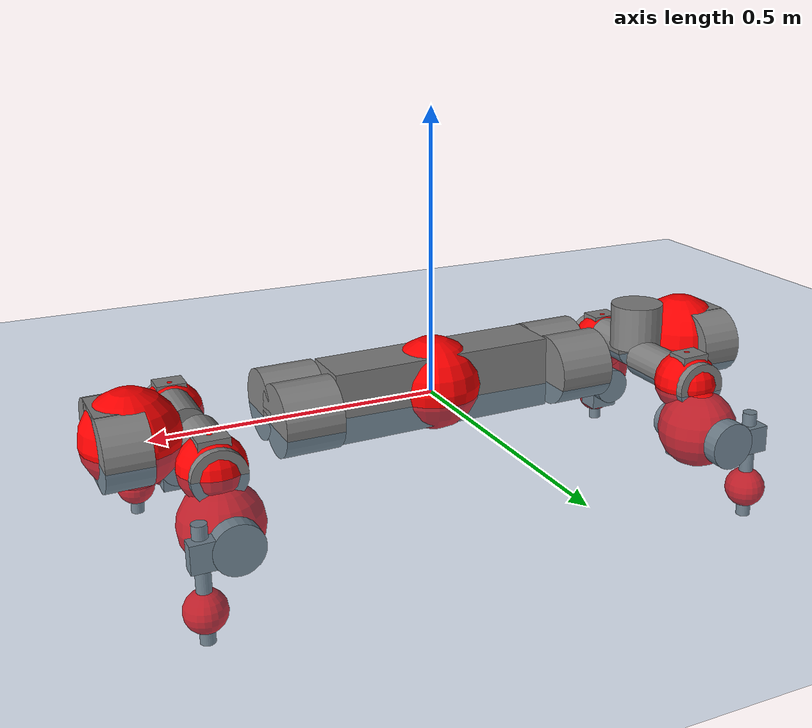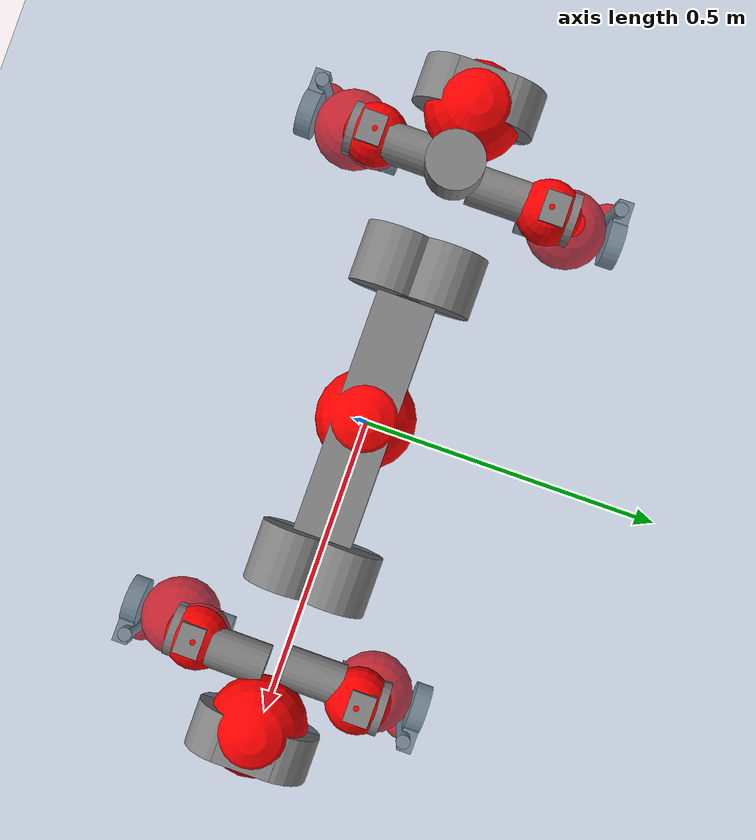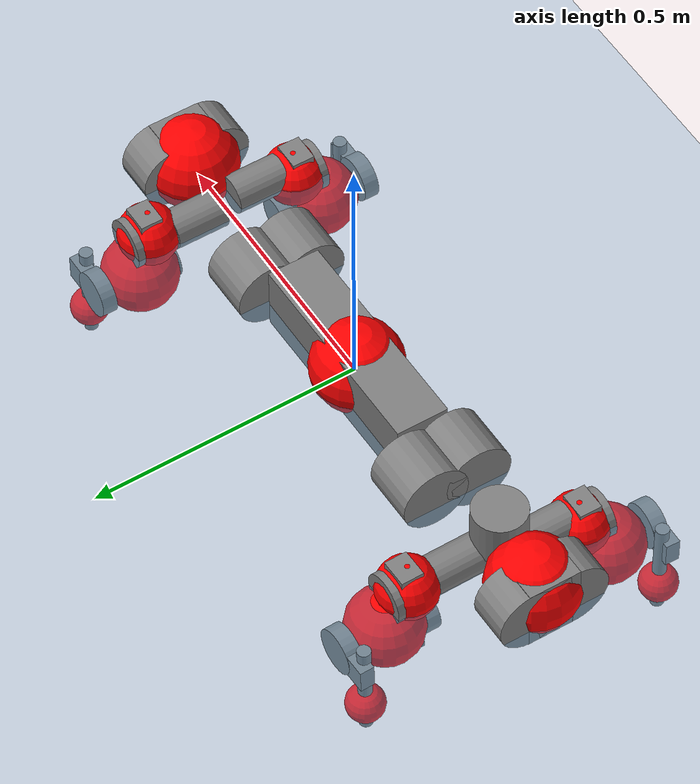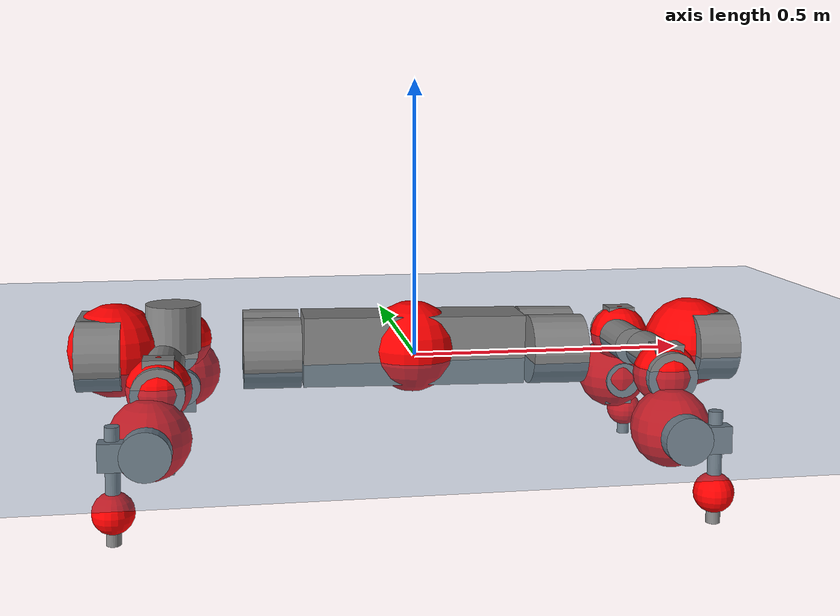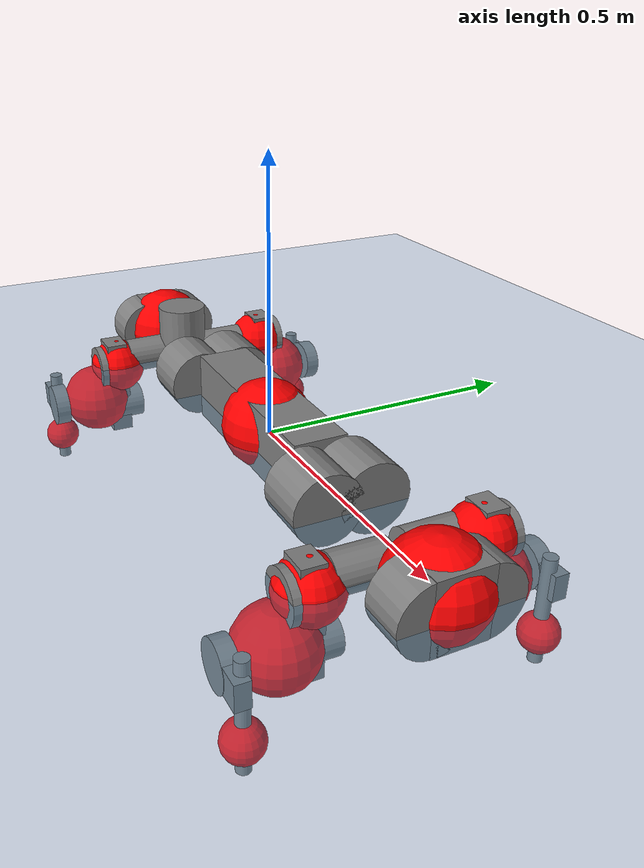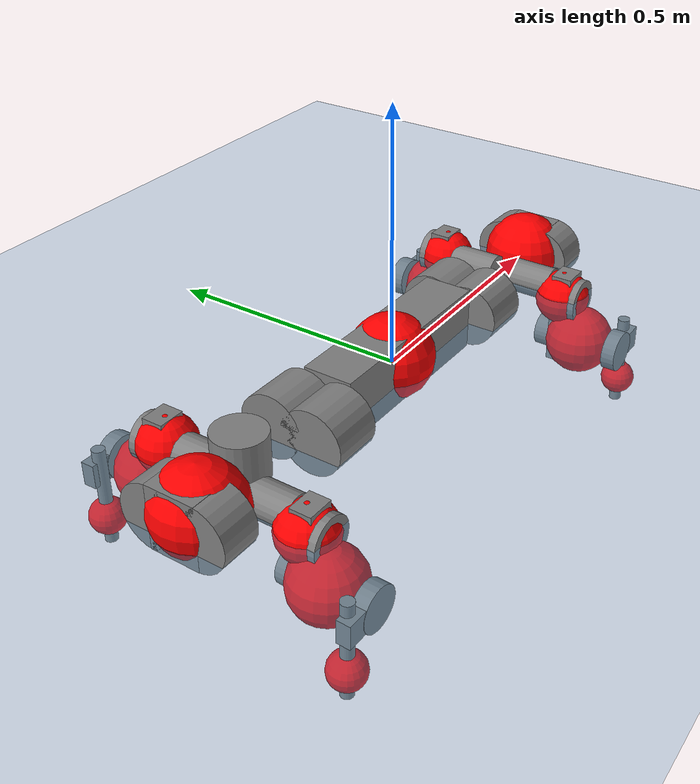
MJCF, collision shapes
<mujoco model="anymal_c">
  <compiler angle="radian" assetdir="assets" balanceinertia="true" inertiafromgeom="false"/>

  <option timestep="0.005" density="1.2" viscosity="2e-05"/>

  <size nkey="1"/>

  <visual>
    <quality shadowsize="8192"/>
    <map shadowclip="0.5"/>
  </visual>

  <default>
    <default class="/">
      <material specular="0" shininess="0.25"/>
      <geom contype="0" conaffinity="0" group="1" solref="-1000 -80"/>
      <site size="0.01 0.005 0.005" group="5"/>
      <general forcelimited="true" forcerange="-80 80" biastype="affine" gainprm="80" biasprm="0 -80 -2"/>
      <default class="anymal_c">
        <joint armature="0.01" damping="0.01" frictionloss="0.1"/>
        <default class="visual">
          <geom type="mesh" group="2"/>
          <default class="visual_zflip"/>
        </default>
        <default class="collision">
          <geom type="cylinder" group="3"/>
          <default class="foot">
            <geom size="0.03 0 0" type="sphere" condim="6" priority="1" friction="0.8 0.02 0.01" solimp="0.015 1 0.03"/>
          </default>
        </default>
      </default>
      <default class="reward_collision_sphere">
        <geom group="5" rgba="1 0 0 1"/>
      </default>
    </default>
  </default>

  <asset>
    <texture type="skybox" colorspace="auto" name="//unnamed_texture_0" builtin="gradient" rgb1="0.95 0.95 0.95" rgb2="0.95 0.95 0.95" width="100" height="600"/>
    <texture type="2d" colorspace="auto" name="texplane" builtin="checker" rgb1="0.345 0.575 0.748" rgb2="0.345 0.575 0.748" markrgb="1 1 1" width="512" height="512"/>
    <texture type="2d" colorspace="linear" name="base" file="base.png"/>
    <texture type="2d" colorspace="linear" name="top_shell" file="top_shell.png"/>
    <texture type="2d" colorspace="linear" name="bottom_shell" file="bottom_shell.png"/>
    <texture type="2d" colorspace="linear" name="remote" file="remote.png"/>
    <texture type="2d" colorspace="linear" name="hatch" file="hatch.png"/>
    <texture type="2d" colorspace="linear" name="handle" file="handle.png"/>
    <texture type="2d" colorspace="linear" name="face" file="face.png"/>
    <texture type="2d" colorspace="linear" name="battery" file="battery.png"/>
    <texture type="2d" colorspace="linear" name="lidar_cage" file="lidar_cage.png"/>
    <texture type="2d" colorspace="linear" name="depth_camera" file="depth_camera.png"/>
    <texture type="2d" colorspace="linear" name="wide_angle_camera" file="wide_angle_camera.png"/>
    <texture type="2d" colorspace="linear" name="lidar" file="lidar.png"/>
    <texture type="2d" colorspace="linear" name="drive" file="drive.png"/>
    <texture type="2d" colorspace="linear" name="hip_l" file="hip_l.png"/>
    <texture type="2d" colorspace="linear" name="shank_l" file="shank_l.png"/>
    <texture type="2d" colorspace="linear" name="foot" file="foot.png"/>
    <texture type="2d" colorspace="linear" name="thigh" file="thigh.png"/>
    <texture type="2d" colorspace="linear" name="shank_r" file="shank_r.png"/>
    <texture type="2d" colorspace="linear" name="hip_r" file="hip_r.png"/>
    <material name="MatPlane" class="/" texture="texplane" texuniform="true" texrepeat="2 2" specular="0.9" shininess="0.5"/>
    <material name="black_plastic" class="/" rgba="0.007 0.007 0.007 1"/>
    <material name="green" class="/" rgba="0.052 0.178 0.033 1"/>
    <material name="red" class="/" rgba="0.178 0.006 0.005 1"/>
    <material name="yellow" class="/" rgba="0.178 0.119 0.006 1"/>
    <material name="lwl" class="/" rgba="0.8 0.8 0.8 1"/>
    <material name="base" class="/" texture="base"/>
    <material name="top_shell" class="/" texture="top_shell"/>
    <material name="bottom_shell" class="/" texture="bottom_shell"/>
    <material name="hip_l" class="/" texture="hip_l"/>
    <material name="thigh" class="/" texture="thigh"/>
    <material name="shank_l" class="/" texture="shank_l"/>
    <material name="foot" class="/" texture="foot"/>
    <material name="hip_r" class="/" texture="hip_r"/>
    <material name="shank" class="/" texture="shank_r"/>
    <material name="hatch" class="/" texture="hatch"/>
    <material name="remote" class="/" texture="remote"/>
    <material name="handle" class="/" texture="handle"/>
    <material name="face" class="/" texture="face"/>
    <material name="depth_camera" class="/" texture="depth_camera"/>
    <material name="wide_angle_camera" class="/" texture="wide_angle_camera"/>
    <material name="battery" class="/" texture="battery"/>
    <material name="lidar_cage" class="/" texture="lidar_cage"/>
    <material name="lidar" class="/" texture="lidar"/>
    <material name="drive" class="/" texture="drive"/>
    <mesh name="base_0" class="/" file="base_0.obj"/>
    <mesh name="base_1" class="/" file="base_1.obj"/>
    <mesh name="base_2" class="/" file="base_2.obj"/>
    <mesh name="base_3" class="/" file="base_3.obj"/>
    <mesh name="base_4" class="/" file="base_4.obj"/>
    <mesh name="base_5" class="/" file="base_5.obj"/>
    <mesh name="top_shell" class="/" file="top_shell.obj"/>
    <mesh name="bottom_shell" class="/" file="bottom_shell.obj"/>
    <mesh name="remote" class="/" file="remote.obj"/>
    <mesh name="handle" class="/" file="handle.obj"/>
    <mesh name="face" class="/" file="face.obj"/>
    <mesh name="wide_angle_camera" class="/" file="wide_angle_camera.obj"/>
    <mesh name="depth_camera" class="/" file="depth_camera.obj"/>
    <mesh name="battery" class="/" file="battery.obj"/>
    <mesh name="lidar_cage" class="/" file="lidar_cage.obj"/>
    <mesh name="lidar" class="/" file="lidar.obj"/>
    <mesh name="drive" class="/" file="drive.obj"/>
    <mesh name="hip_l" class="/" file="hip_l.obj"/>
    <mesh name="thigh" class="/" file="thigh.obj"/>
    <mesh name="shank_l" class="/" file="shank_l.obj"/>
    <mesh name="foot" class="/" file="foot.obj"/>
    <mesh name="hip_r" class="/" file="hip_r.obj"/>
    <mesh name="hatch" class="/" file="hatch.obj"/>
    <mesh name="shank_r" class="/" file="shank_r.obj"/>
  </asset>

  <worldbody>
    <geom name="floor" class="/" size="100 100 0.125" type="plane" group="0" material="MatPlane"/>
    <light name="toplight_shadow" class="/" pos="0 0 5" dir="0.0990148 0.0990148 -0.990148" type="directional" ambient="0.04 0.04 0.04" diffuse="0.55 0.55 0.55" specular="0.12 0.12 0.12"/>
    <light name="toplight_fill" class="/" pos="0 0 5" dir="0.0990148 0.0990148 -0.990148" type="directional" castshadow="false" ambient="0.04 0.04 0.04" diffuse="0.3 0.3 0.3" specular="0.08 0.08 0.08"/>
    <body name="trunk" childclass="anymal_c" pos="-0.00522761 -0.00178806 0.0176425" quat="0.999965 0.000930719 0.00808676 -0.00167467">
      <inertial pos="-0.00144775 -0.0147802 0.0195055" quat="0.493181 0.473047 0.565783 0.461399" mass="5.73708" diaginertia="1.19412 0.0377226 0.000427058"/>
      <joint name="//unnamed_joint_0" type="free" armature="0" damping="0" frictionloss="0"/>
      <geom name="//unnamed_geom_1" class="visual" material="green" mesh="base_0"/>
      <geom name="//unnamed_geom_2" class="visual" material="yellow" mesh="base_1"/>
      <geom name="//unnamed_geom_3" class="visual" material="red" mesh="base_2"/>
      <geom name="//unnamed_geom_4" class="visual" material="black_plastic" mesh="base_3"/>
      <geom name="//unnamed_geom_5" class="visual" material="lwl" mesh="base_4"/>
      <geom name="//unnamed_geom_6" class="visual" material="base" mesh="base_5"/>
      <geom name="trunk_1" class="collision" size="0.200714 0.0484483 0.0622907" type="box"/>
      <geom name="trunk_2" class="collision" size="0.0622907 0.0501786" pos="0.256463 0.0414161 0" quat="0.707107 0 0.707107 0"/>
      <geom name="trunk_3" class="collision" size="0.0622907 0.0501786" pos="-0.256463 0.0414161 0" quat="0.707107 0 0.707107 0"/>
      <geom name="trunk_4" class="collision" size="0.0622907 0.0501786" pos="0.256463 -0.0414161 0" quat="0.707107 0 0.707107 0"/>
      <geom name="trunk_5" class="collision" size="0.0622907 0.0501786" pos="-0.256463 -0.0414161 0" quat="0.707107 0 0.707107 0"/>
      <geom name="//unnamed_geom_12" class="visual" material="top_shell" mesh="top_shell"/>
      <geom name="//unnamed_geom_13" class="visual" material="bottom_shell" mesh="bottom_shell"/>
      <geom name="//unnamed_geom_14" class="visual" material="remote" mesh="remote"/>
      <geom name="//unnamed_geom_15" class="visual" material="handle" mesh="handle"/>
      <geom name="//unnamed_geom_16" class="visual" pos="0.488753 0 0" quat="1 0 0 0" material="face" mesh="face"/>
      <geom name="trunk_6" class="collision" size="0.0380665 0.0484483 0.0622907" pos="0.553606 0 0" type="box"/>
      <geom name="//unnamed_geom_18" class="collision" size="0.0622907 0.0380665" pos="0.553606 0.0414161 0" quat="0.707107 0 0.707107 0"/>
      <geom name="//unnamed_geom_19" class="collision" size="0.0622907 0.0380665" pos="0.553606 -0.0414161 0" quat="0.707107 0 0.707107 0"/>
      <geom name="//unnamed_geom_20" class="visual" pos="0.544313 0 -0.00228306" quat="0.965926 0 0.258819 0" material="depth_camera" mesh="depth_camera"/>
      <geom name="//unnamed_geom_21" class="visual" pos="0.604898 0 0.00457419" material="wide_angle_camera" mesh="wide_angle_camera"/>
      <geom name="//unnamed_geom_22" class="visual_zflip" pos="-0.488753 0 0" quat="0 0 0 1" material="face" mesh="face"/>
      <geom name="trunk_7" class="collision" size="0.0380665 0.0484483 0.0622907" pos="-0.553606 0 0" quat="0 0 0 1" type="box"/>
      <geom name="//unnamed_geom_24" class="collision" size="0.0622907 0.0380665" pos="-0.553606 -0.0414161 0" quat="0 -0.707107 0 0.707107"/>
      <geom name="//unnamed_geom_25" class="collision" size="0.0622907 0.0380665" pos="-0.553606 0.0414161 0" quat="0 -0.707107 0 0.707107"/>
      <geom name="//unnamed_geom_26" class="visual" pos="-0.544313 0 -0.00228306" quat="0 -0.258819 0 0.965926" material="depth_camera" mesh="depth_camera"/>
      <geom name="//unnamed_geom_27" class="visual_zflip" pos="-0.604898 0 0.00457419" quat="0 0 0 1" material="wide_angle_camera" mesh="wide_angle_camera"/>
      <geom name="//unnamed_geom_28" class="visual" material="battery" mesh="battery"/>
      <geom name="//unnamed_geom_29" class="visual" pos="0 0.037493 0.0155157" quat="0.683013 -0.183013 0.183013 0.683013" material="depth_camera" mesh="depth_camera"/>
      <geom name="//unnamed_geom_30" class="visual" pos="0 -0.037493 0.0155157" quat="0.683013 0.183013 0.183013 -0.683013" material="depth_camera" mesh="depth_camera"/>
      <geom name="//unnamed_geom_31" class="visual" pos="-0.429207 0 0.0224585" quat="1 0 0 0" material="lidar_cage" mesh="lidar_cage"/>
      <geom name="trunk_8" class="collision" size="0.0484483 0.0415271" pos="-0.429207 0 0.0407919"/>
      <geom name="//unnamed_geom_33" class="visual" pos="-0.429207 -0.000230805 0.0434503" quat="0.707107 0 0 -0.707107" material="lidar" mesh="lidar"/>
      <geom name="//unnamed_geom_34" class="visual" pos="0.353624 0.0614309 4.93529e-09" quat="0.258819 0.965926 0 0" material="drive" mesh="drive"/>
      <geom name="//unnamed_geom_35" class="visual" pos="0.353624 -0.0614309 -4.93529e-09" quat="0.258819 -0.965926 0 0" material="drive" mesh="drive"/>
      <geom name="//unnamed_geom_36" class="visual" pos="-0.353624 0.0614309 -4.93529e-09" quat="0 0 0.965926 -0.258819" material="drive" mesh="drive"/>
      <geom name="//unnamed_geom_37" class="visual" pos="-0.353624 -0.0614309 4.93529e-09" quat="0 0 -0.965926 -0.258819" material="drive" mesh="drive"/>
      <geom name="//unnamed_geom_38" class="visual" pos="0.13678 0 0.0223057" quat="1 0 0 0" material="hatch" mesh="hatch"/>
      <geom name="//unnamed_geom_39" class="reward_collision_sphere" size="0.0830542"/>
      <geom name="//unnamed_geom_40" class="reward_collision_sphere" size="0.0830542" pos="0.530613 0 0"/>
      <geom name="//unnamed_geom_41" class="reward_collision_sphere" size="0.0830542" pos="-0.530613 0 0"/>
      <site name="imu" pos="0.261558 -0.0535172 0.0851609" size="0.00692118"/>
      <camera name="track" pos="0 -1.18332 0" quat="0.707107 0.707107 0 0" mode="trackcom"/>
      <camera name="ego_camera" pos="0.530613 0 -0.0122223" quat="-0.5 -0.5 0.5 0.5"/>
      <body name="LF_HIP" pos="0.355113 0.0528871 -0.00933298" quat="0.260001 0.965607 -0.00110722 0.00090998">
        <inertial pos="0.0828969 -0.0104338 0.0146482" quat="-0.168457 0.75333 -0.0980927 0.628087" mass="1.0636" diaginertia="0.0126795 0.000448108 1.00305e-05"/>
        <joint name="LF_HAA" pos="0 0 0" axis="0.997033 -0.0206271 0.0741598" stiffness="0.06759" range="-0.676993 0.267788" armature="0.00705966" damping="0.0759529" frictionloss="0.0310506"/>
        <geom name="//unnamed_geom_42" class="visual" pos="0 0.00029032 -4.76849e-05" quat="0.258819 -0.965926 0 0" material="hip_l" mesh="hip_l"/>
        <geom name="//unnamed_geom_43" class="visual" pos="0.0706304 -0.0777471 -0.0427712" quat="0.183013 -0.683013 0.683013 0.183013" material="drive" mesh="drive"/>
        <geom name="//unnamed_geom_44" class="collision" size="0.0346059 0.0484483" pos="0.0706304 -0.00707612 -0.00210987" quat="-0.353553 -0.612372 0.612372 -0.353553"/>
        <body name="LF_THIGH" pos="0.0851552 -0.0529088 -0.0268222" quat="0.182921 -0.682911 0.6829 0.1839">
          <inertial pos="0.0373306 -0.00196335 -0.0712657" quat="0.991018 0.0298044 -0.102442 0.0806329" mass="1.10904" diaginertia="0.0755394 0.00260167 1.57322e-05"/>
          <joint name="LF_HFE" pos="0 0 0" axis="0.999973 -0.00719548 0.00110694" stiffness="0.0178825" range="-2.91349 3.15108" armature="0.0109062" damping="0" frictionloss="0.0674381"/>
          <geom name="//unnamed_geom_45" class="visual" pos="0.0116885 1.84184e-05 0" quat="0.707107 0 0 -0.707107" material="thigh" mesh="thigh"/>
          <geom name="//unnamed_geom_46" class="collision" size="0.0449877 0.0276847" pos="0.0471656 0 0" quat="0.5 0.5 -0.5 -0.5"/>
          <geom name="//unnamed_geom_47" class="collision" size="0.0259544 0.0207636 0.097806" pos="0.0353742 0 -0.0431795" quat="0.707107 0 0 -0.707107" type="box"/>
          <geom name="//unnamed_geom_48" class="visual" pos="0.118268 0 -0.0870838" quat="1 0 0 0" material="drive" mesh="drive"/>
          <geom name="//unnamed_geom_49" class="collision" size="0.0346059 0.0484483" pos="0.0357279 0 -0.0870838" quat="0.707107 0 0.707107 0"/>
          <geom name="//unnamed_geom_50" class="reward_collision_sphere" size="0.0553695" pos="0.0294785 0 0"/>
          <body name="LF_SHANK" pos="0.110801 0.00244493 -0.0839202" quat="1 0.000274045 -1.23358e-05 3.83325e-05">
            <inertial pos="0.0252443 -0.019283 -0.0252444" quat="0.992955 -0.113032 -0.0178908 -0.0307148" mass="0.197739" diaginertia="0.0290447 0.000656298 3.17513e-06"/>
            <joint name="LF_KFE" pos="0 0 0" axis="0.999943 0.00848274 0.00646749" stiffness="0.00189975" range="-2.76904 2.90635" armature="0.0101829" damping="0.0405645" frictionloss="0.00677654"/>
            <geom name="//unnamed_geom_51" class="visual" pos="0.00381138 0.0203225 0" quat="0.707107 0 0 -0.707107" material="shank_l" mesh="shank_l"/>
            <geom name="LF_kfe_act" class="collision" size="0.0415271 0.0138424" pos="0.0235828 0 0" quat="0.5 0.5 -0.5 -0.5"/>
            <geom name="//unnamed_geom_53" class="collision" size="0.0397961 0.023359 0.0131503" pos="0.0235828 -0.0340198 0" quat="0.5 0.5 -0.5 -0.5" type="box"/>
            <geom name="//unnamed_geom_54" class="visual" pos="0.0153868 -0.0454873 -0.103269" quat="0.382683 0 0 -0.92388" material="foot" mesh="foot"/>
            <geom name="LF_calf" class="collision" size="0.0121121 0.0977631" pos="0.0153878 -0.0520364 -0.0516346" quat="0.707107 0 0 -0.707107"/>
            <geom name="LF_foot" class="foot" size="0.0297127" pos="0.0153878 -0.0520364 -0.0963942" quat="0.707107 0 0 -0.707107"/>
            <geom name="//unnamed_geom_57" class="reward_collision_sphere" size="0.0692118" pos="-0.0589569 0 0"/>
            <geom name="//unnamed_geom_58" class="reward_collision_sphere" size="0.0346059" pos="0.0153878 -0.0520364 -0.0963942"/>
            <site name="LF_foot" class="foot" pos="0.0153878 -0.0520364 -0.0963942" quat="0.707107 0 0 -0.707107" size="0.00692118"/>
          </body>
        </body>
      </body>
      <body name="RF_HIP" pos="0.365012 -0.0601135 -0.00746316" quat="0.253032 -0.967434 0.00358003 -0.00574001">
        <inertial pos="0.076241 0.00794575 -0.00236297" quat="0.134436 0.715449 0.191108 0.658436" mass="0.789319" diaginertia="0.0135942 0.000406855 8.99882e-06"/>
        <joint name="RF_HAA" pos="0 0 0" axis="0.998423 0.0557754 -0.00642786" stiffness="0.0747648" range="-0.139585 0.940734" armature="0.00473277" damping="0.069902" frictionloss="0.02607"/>
        <geom name="//unnamed_geom_59" class="visual" pos="0 -0.000290318 -4.76848e-05" quat="0.258819 0.965926 0 0" material="hip_r" mesh="hip_r"/>
        <geom name="//unnamed_geom_60" class="visual" pos="0.0706304 0.0777471 -0.0427712" quat="0.183013 0.683013 0.683013 -0.183013" material="drive" mesh="drive"/>
        <geom name="//unnamed_geom_61" class="collision" size="0.0346059 0.0484483" pos="0.0706304 0.00707612 -0.00210987" quat="-0.353553 0.612372 0.612372 0.353553"/>
        <body name="RF_THIGH" pos="0.0681463 0.0546684 -0.00874412" quat="0.180686 0.685298 0.680554 -0.185921">
          <inertial pos="0.0467662 -0.00238626 -0.0666949" quat="0.988929 -0.0346544 -0.101199 0.102842" mass="0.847446" diaginertia="0.0666957 0.00258707 9.85544e-06"/>
          <joint name="RF_HFE" pos="0 0 0" axis="1 -0.000103097 -0.000176592" range="-3.13499 3.37083" armature="0.0108776" damping="0.0948308" frictionloss="0.118827"/>
          <geom name="//unnamed_geom_62" class="visual" pos="0.0116885 1.84184e-05 0" quat="0.707107 0 0 -0.707107" material="thigh" mesh="thigh"/>
          <geom name="//unnamed_geom_63" class="collision" size="0.0449877 0.0276847" pos="0.0471656 0 0" quat="0.5 0.5 0.5 0.5"/>
          <geom name="//unnamed_geom_64" class="collision" size="0.0259544 0.0207636 0.097806" pos="0.0353742 0 -0.0431795" quat="0.707107 0 0 0.707107" type="box"/>
          <geom name="//unnamed_geom_65" class="visual" pos="0.118268 0 -0.0870838" quat="1 0 0 0" material="drive" mesh="drive"/>
          <geom name="//unnamed_geom_66" class="collision" size="0.0346059 0.0484483" pos="0.0357279 0 -0.0870838" quat="0.707107 0 0.707107 0"/>
          <geom name="//unnamed_geom_67" class="reward_collision_sphere" size="0.0553695" pos="0.0294785 0 0"/>
          <body name="RF_SHANK" pos="0.135631 -0.00422383 -0.0859794" quat="0.999994 0.00234099 0.00211677 -0.00103944">
            <inertial pos="0.0138862 0.0525232 -0.0390489" quat="0.996181 0.0557628 -0.067039 0.00446076" mass="0.252204" diaginertia="0.0292881 0.000649357 4.14512e-06"/>
            <joint name="RF_KFE" pos="0 0 0" axis="1 8.57467e-06 0.000312902" stiffness="0.0342309" range="-3.07772 3.2441" armature="0.00829718" damping="0.0691194" frictionloss="0.105788"/>
            <geom name="//unnamed_geom_68" class="visual" pos="0.00381136 -0.0203224 0" quat="0.707107 0 0 0.707107" material="shank" mesh="shank_r"/>
            <geom name="RF_kfe_act" class="collision" size="0.0415271 0.0138424" pos="0.0235828 0 0" quat="0.5 0.5 0.5 0.5"/>
            <geom name="//unnamed_geom_70" class="collision" size="0.0397961 0.023359 0.0131503" pos="0.0235828 0.0340198 0" quat="0.5 0.5 0.5 0.5" type="box"/>
            <geom name="//unnamed_geom_71" class="visual" pos="0.0153887 0.0454873 -0.103269" quat="0.382683 0 0 0.92388" material="foot" mesh="foot"/>
            <geom name="RF_calf" class="collision" size="0.0121121 0.0977631" pos="0.0153878 0.0520364 -0.0516346" quat="0.707107 0 0 0.707107"/>
            <geom name="RF_foot" class="foot" size="0.0332439" pos="0.0153878 0.0520364 -0.0963942" quat="0.707107 0 0 0.707107"/>
            <geom name="//unnamed_geom_74" class="reward_collision_sphere" size="0.0692118" pos="-0.0589569 0 0"/>
            <geom name="//unnamed_geom_75" class="reward_collision_sphere" size="0.0346059" pos="0.0153878 0.0520364 -0.0963942"/>
            <site name="RF_foot" class="foot" pos="0.0153878 0.0520364 -0.0963942" quat="0.707107 0 0 0.707107" size="0.00692118"/>
          </body>
        </body>
      </body>
      <body name="LH_HIP" pos="-0.350867 0.0744642 -0.0131811" quat="0.00251391 -0.00320771 0.965794 -0.259278">
        <inertial pos="0.0750924 0.0251458 0.0151816" quat="0.161693 0.682613 0.0899271 0.706971" mass="1.12063" diaginertia="0.0173029 0.00036049 1.18038e-05"/>
        <joint name="LH_HAA" pos="0 0 0" axis="0.997021 0.0325803 0.0699179" range="-0.179047 0.392216" armature="0.00176174" damping="0" frictionloss="0.073628"/>
        <geom name="//unnamed_geom_76" class="visual" pos="0 -0.000290318 -4.76848e-05" quat="-0.258819 -0.965926 0 0" material="hip_r" mesh="hip_r"/>
        <geom name="//unnamed_geom_77" class="visual" pos="0.0706304 0.0777471 -0.0427712" quat="0.183013 0.683013 0.683013 -0.183013" material="drive" mesh="drive"/>
        <geom name="//unnamed_geom_78" class="collision" size="0.0346059 0.0484483" pos="0.0706304 0.00707612 -0.00210987" quat="-0.353553 0.612372 0.612372 0.353553"/>
        <body name="LH_THIGH" pos="0.0678908 0.0583419 -0.0300817" quat="0.179115 0.68577 0.680223 -0.186905">
          <inertial pos="0.0179231 0.0135731 -0.0568264" quat="0.992742 -0.00632984 -0.0792318 0.0902567" mass="0.812899" diaginertia="0.0417054 0.00154061 7.13154e-06"/>
          <joint name="LH_HFE" pos="0 0 0" axis="0.995827 -0.0427723 -0.0806175" range="-2.89201 3.06545" armature="0.00489413" damping="0.0980861" frictionloss="0.0342614"/>
          <geom name="//unnamed_geom_79" class="visual" pos="0.0116885 1.84184e-05 0" quat="0.707107 0 0 -0.707107" material="thigh" mesh="thigh"/>
          <geom name="//unnamed_geom_80" class="collision" size="0.0449877 0.0276847" pos="0.0471656 0 0" quat="0.5 0.5 -0.5 -0.5"/>
          <geom name="//unnamed_geom_81" class="collision" size="0.0259544 0.0207636 0.097806" pos="0.0353742 0 -0.0431795" quat="0.707107 0 0 -0.707107" type="box"/>
          <geom name="//unnamed_geom_82" class="visual" pos="0.118268 0 -0.0870838" quat="1 0 0 0" material="drive" mesh="drive"/>
          <geom name="//unnamed_geom_83" class="collision" size="0.0346059 0.0484483" pos="0.0357279 0 -0.0870838" quat="0.707107 0 0.707107 0"/>
          <geom name="//unnamed_geom_84" class="reward_collision_sphere" size="0.0553695" pos="0.0294785 0 0"/>
          <body name="LH_SHANK" pos="0.130176 -0.00238465 -0.0748917" quat="0.999975 -0.00106335 0.00457198 0.00536166">
            <inertial pos="0.0237289 0.0231913 -0.00674104" quat="0.989976 0.12167 0.0709291 -0.0106796" mass="0.217123" diaginertia="0.0266847 0.000887108 3.05196e-06"/>
            <joint name="LH_KFE" pos="0 0 0" axis="0.999957 0.00867174 -0.00330168" stiffness="0.0299598" range="-3.25956 3.51522" armature="0.00173978" damping="0.0917018" frictionloss="0.0737384"/>
            <geom name="//unnamed_geom_85" class="visual" pos="0.00381136 -0.0203224 0" quat="-0.707107 0 0 -0.707107" material="shank" mesh="shank_r"/>
            <geom name="LH_kfe_act" class="collision" size="0.0415271 0.0138424" pos="0.0235828 0 0" quat="0.5 0.5 -0.5 -0.5"/>
            <geom name="//unnamed_geom_87" class="collision" size="0.0397961 0.023359 0.0131503" pos="0.0235828 0.0340198 0" quat="0.5 0.5 -0.5 -0.5" type="box"/>
            <geom name="//unnamed_geom_88" class="visual" pos="0.0153887 0.0454873 -0.103269" quat="-0.382683 0 0 -0.92388" material="foot" mesh="foot"/>
            <geom name="LH_calf" class="collision" size="0.0121121 0.0977631" pos="0.0153878 0.0520364 -0.0516346" quat="0.707107 0 0 -0.707107"/>
            <geom name="LH_foot" class="foot" size="0.013667" pos="0.0153878 0.0520364 -0.0963942" quat="0.707107 0 0 -0.707107"/>
            <geom name="//unnamed_geom_91" class="reward_collision_sphere" size="0.0692118" pos="-0.0589569 0 0"/>
            <geom name="//unnamed_geom_92" class="reward_collision_sphere" size="0.0346059" pos="0.0153878 0.0520364 -0.0963942"/>
            <site name="LH_foot" class="foot" pos="0.0153878 0.0520364 -0.0963942" quat="0.707107 0 0 -0.707107" size="0.00692118"/>
          </body>
        </body>
      </body>
      <body name="RH_HIP" pos="-0.372226 -0.0659307 -0.0158548" quat="-4.47041e-05 0.000192274 -0.965872 -0.259019">
        <inertial pos="0.0814082 0.00284613 -0.00233596" quat="-0.190733 0.718818 -0.174186 0.64543" mass="0.888174" diaginertia="0.00820408 0.000268122 5.88642e-06"/>
        <joint name="RH_HAA" pos="0 0 0" axis="0.995612 -0.0720355 -0.0597353" range="-0.515047 0.498428" armature="0.00702539" damping="0.0117145" frictionloss="0.00514324"/>
        <geom name="//unnamed_geom_93" class="visual" pos="0 0.00029032 -4.76849e-05" quat="-0.258819 0.965926 0 0" material="hip_l" mesh="hip_l"/>
        <geom name="//unnamed_geom_94" class="visual" pos="0.0706304 -0.0777471 -0.0427712" quat="-0.183013 0.683013 -0.683013 -0.183013" material="drive" mesh="drive"/>
        <geom name="//unnamed_geom_95" class="collision" size="0.0346059 0.0484483" pos="0.0706304 -0.00707612 -0.00210987" quat="0.353553 0.612372 -0.612372 0.353553"/>
        <body name="RH_THIGH" pos="0.075735 -0.0509896 -0.00569829" quat="-0.182119 0.684501 -0.681446 -0.184181">
          <inertial pos="0.0266297 0.0111027 -0.059133" quat="0.988928 -0.0658565 -0.0877121 0.0999556" mass="1.37816" diaginertia="0.0614053 0.00245532 1.12036e-05"/>
          <joint name="RH_HFE" pos="0 0 0" axis="0.998774 -0.00878271 0.0487244" range="-3.1819 3.42202" armature="0.00687998" damping="0.0460396" frictionloss="0.0952381"/>
          <geom name="//unnamed_geom_96" class="visual" pos="0.0116885 1.84184e-05 0" quat="0.707107 0 0 -0.707107" material="thigh" mesh="thigh"/>
          <geom name="//unnamed_geom_97" class="collision" size="0.0449877 0.0276847" pos="0.0471656 0 0" quat="0.5 0.5 0.5 0.5"/>
          <geom name="//unnamed_geom_98" class="collision" size="0.0259544 0.0207636 0.097806" pos="0.0353742 0 -0.0431795" quat="0.707107 0 0 0.707107" type="box"/>
          <geom name="//unnamed_geom_99" class="visual" pos="0.118268 0 -0.0870838" quat="1 0 0 0" material="drive" mesh="drive"/>
          <geom name="//unnamed_geom_100" class="collision" size="0.0346059 0.0484483" pos="0.0357279 0 -0.0870838" quat="0.707107 0 0.707107 0"/>
          <geom name="//unnamed_geom_101" class="reward_collision_sphere" size="0.0553695" pos="0.0294785 0 0"/>
          <body name="RH_SHANK" pos="0.13502 -0.0139273 -0.0734927" quat="0.999956 0.00104933 0.00636873 -0.00683115">
            <inertial pos="-0.00191434 -0.0356834 -0.0259361" quat="0.996703 -0.0597199 -0.0549074 -0.00106933" mass="0.179204" diaginertia="0.0211478 0.000491108 3.06374e-06"/>
            <joint name="RH_KFE" pos="0 0 0" axis="0.995894 -0.0868794 0.0254458" stiffness="0.0837356" range="-3.45055 3.28674" armature="0.00622591" damping="0.0877255" frictionloss="0.0957479"/>
            <geom name="//unnamed_geom_102" class="visual" pos="0.00381138 0.0203225 0" quat="0.707107 0 0 -0.707107" material="shank_l" mesh="shank_l"/>
            <geom name="RH_kfe_act" class="collision" size="0.0415271 0.0138424" pos="0.0235828 0 0" quat="0.5 0.5 0.5 0.5"/>
            <geom name="//unnamed_geom_104" class="collision" size="0.0397961 0.023359 0.0131503" pos="0.0235828 -0.0340198 0" quat="0.5 0.5 0.5 0.5" type="box"/>
            <geom name="//unnamed_geom_105" class="visual" pos="0.0153868 -0.0454873 -0.103269" quat="0.382683 0 0 -0.92388" material="foot" mesh="foot"/>
            <geom name="RH_calf" class="collision" size="0.0121121 0.0977631" pos="0.0153878 -0.0520364 -0.0516346" quat="0.707107 0 0 0.707107"/>
            <geom name="RH_foot" class="foot" size="0.0266693" pos="0.0153878 -0.0520364 -0.0963942" quat="0.707107 0 0 0.707107"/>
            <geom name="//unnamed_geom_108" class="reward_collision_sphere" size="0.0692118" pos="-0.0589569 0 0"/>
            <geom name="//unnamed_geom_109" class="reward_collision_sphere" size="0.0346059" pos="0.0153878 -0.0520364 -0.0963942"/>
            <site name="RH_foot" class="foot" pos="0.0153878 -0.0520364 -0.0963942" quat="0.707107 0 0 0.707107" size="0.00692118"/>
          </body>
        </body>
      </body>
    </body>
  </worldbody>

  <contact>
    <pair class="/" geom1="floor" geom2="LF_foot" name="//unnamed_contact_0"/>
    <pair class="/" geom1="floor" geom2="RF_foot" name="//unnamed_contact_1"/>
    <pair class="/" geom1="floor" geom2="LH_foot" name="//unnamed_contact_2"/>
    <pair class="/" geom1="floor" geom2="RH_foot" name="//unnamed_contact_3"/>
  </contact>

  <actuator>
    <general name="LF_HAA" class="/" joint="LF_HAA" forcerange="-60.7572 60.7572" gainprm="46.3772" biasprm="0 -46.3772 -1.64851"/>
    <general name="LF_HFE" class="/" joint="LF_HFE" forcerange="-42.4696 42.4696" gainprm="46.3772" biasprm="0 -46.3772 -1.64851"/>
    <general name="LF_KFE" class="/" joint="LF_KFE" forcerange="-31.492 31.492" gainprm="46.3772" biasprm="0 -46.3772 -1.64851"/>
    <general name="RF_HAA" class="/" joint="RF_HAA" forcerange="-67.6222 67.6222" gainprm="46.3772" biasprm="0 -46.3772 -1.64851"/>
    <general name="RF_HFE" class="/" joint="RF_HFE" forcerange="-32.1232 32.1232" gainprm="46.3772" biasprm="0 -46.3772 -1.64851"/>
    <general name="RF_KFE" class="/" joint="RF_KFE" forcerange="-59.7454 59.7454" gainprm="46.3772" biasprm="0 -46.3772 -1.64851"/>
    <general name="LH_HAA" class="/" joint="LH_HAA" forcerange="-61.7845 61.7845" gainprm="46.3772" biasprm="0 -46.3772 -1.64851"/>
    <general name="LH_HFE" class="/" joint="LH_HFE" forcerange="-91.6993 91.6993" gainprm="46.3772" biasprm="0 -46.3772 -1.64851"/>
    <general name="LH_KFE" class="/" joint="LH_KFE" forcerange="-21.9206 21.9206" gainprm="46.3772" biasprm="0 -46.3772 -1.64851"/>
    <general name="RH_HAA" class="/" joint="RH_HAA" forcerange="-57.4436 57.4436" gainprm="46.3772" biasprm="0 -46.3772 -1.64851"/>
    <general name="RH_HFE" class="/" joint="RH_HFE" forcerange="-73.5665 73.5665" gainprm="46.3772" biasprm="0 -46.3772 -1.64851"/>
    <general name="RH_KFE" class="/" joint="RH_KFE" forcerange="-30.6381 30.6381" gainprm="46.3772" biasprm="0 -46.3772 -1.64851"/>
  </actuator>

  <sensor>
    <gyro site="imu" name="imu_angular_velocity"/>
    <velocimeter site="imu" name="imu_linear_velocity"/>
    <framelinvel objtype="site" objname="LF_foot" name="LF_foot_global_linear_velocity"/>
    <framelinvel objtype="site" objname="RF_foot" name="RF_foot_global_linear_velocity"/>
    <framelinvel objtype="site" objname="LH_foot" name="LH_foot_global_linear_velocity"/>
    <framelinvel objtype="site" objname="RH_foot" name="RH_foot_global_linear_velocity"/>
  </sensor>

  <keyframe>
    <key name="home" qpos="0 0 0.55 1 0 0 0 0 0.4 -0.8 0 -0.4 0.8 0 -0.4 0.8 0 0.4 -0.8"/>
  </keyframe>
</mujoco>
